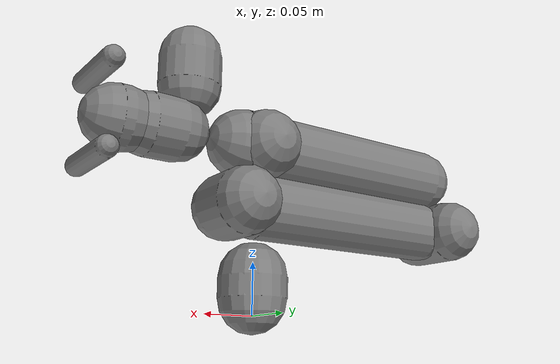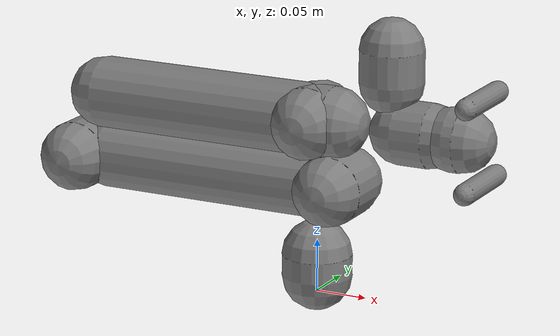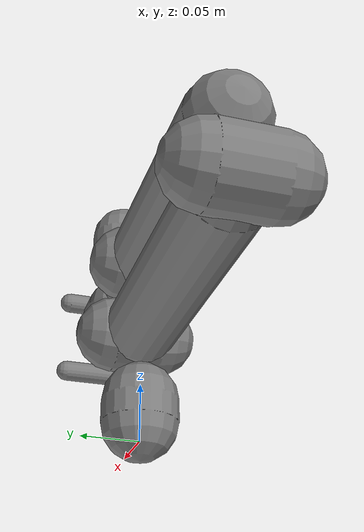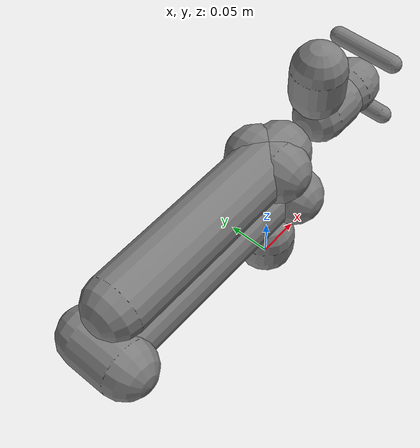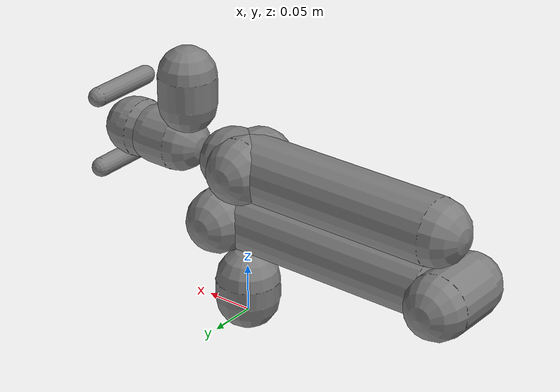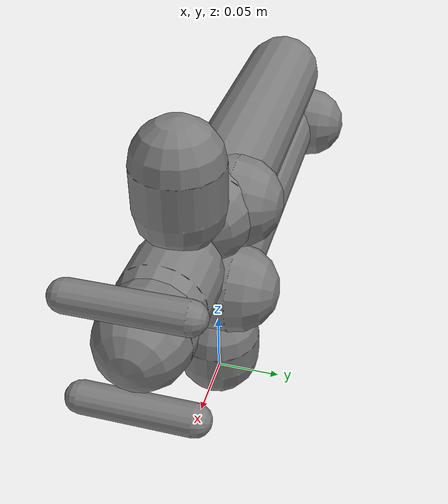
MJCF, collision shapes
<mujoco model="yam">
    <compiler angle="radian"/>

    <asset>
        <material name="yam_black" rgba="0.25 0.25 0.25 1"/>
        <material name="yam_white" rgba="0.9 0.9 0.9 1"/>
        <mesh name="yam_model2" file="meshes/model2.stl"/>
        <mesh name="yam_model2__2" file="meshes/model2__2.stl"/>
        <mesh name="yam_model2__3" file="meshes/model2__3.stl"/>
        <mesh name="yam_model2__4" file="meshes/model2__4.stl"/>
        <mesh name="yam_model2__5" file="meshes/model2__5.stl"/>
        <mesh name="yam_model2__6" file="meshes/model2__6.stl"/>
        <mesh name="yam_model2__7" file="meshes/model2__7.stl"/>
        <mesh name="yam_model2__8" file="meshes/model2__8.stl"/>
        <mesh name="yam_model2__9" file="meshes/model2__9.stl"/>
        <mesh name="yam_model2__10" file="meshes/model2__10.stl"/>
        <mesh name="yam_model2__11" file="meshes/model2__11.stl"/>
        <mesh name="yam_model2__12" file="meshes/model2__12.stl"/>
        <mesh name="yam_model2__13" file="meshes/model2__13.stl"/>
        <mesh name="yam_model2__14" file="meshes/model2__14.stl"/>
        <mesh name="yam_model2__15" file="meshes/model2__15.stl"/>
        <mesh name="yam_model2__16" file="meshes/model2__16.stl"/>
        <mesh name="yam_model2__17" file="meshes/model2__17.stl"/>
    </asset>

    <actuator>
        <!-- YAM arm joints as torque actuators (required for OSC controller).
             Torque limits from homer: dm4340 ±28 Nm, dm4310 ±10 Nm. -->
        <motor ctrllimited="true" ctrlrange="-28.0 28.0" joint="joint1" name="torq_j1"/>
        <motor ctrllimited="true" ctrlrange="-28.0 28.0" joint="joint2" name="torq_j2"/>
        <motor ctrllimited="true" ctrlrange="-28.0 28.0" joint="joint3" name="torq_j3"/>
        <motor ctrllimited="true" ctrlrange="-10.0 10.0" joint="joint4" name="torq_j4"/>
        <motor ctrllimited="true" ctrlrange="-10.0 10.0" joint="joint5" name="torq_j5"/>
        <motor ctrllimited="true" ctrlrange="-10.0 10.0" joint="joint6" name="torq_j6"/>
    </actuator>

    <worldbody>
        <body name="base" pos="0 0 0">
            <!-- Robot overview camera -->
            <camera mode="fixed" name="robotview" pos="1.0 0 0.4" quat="0.653 0.271 0.271 0.653"/>
            <inertial pos="0 0 0" mass="0.5" diaginertia="0.001 0.001 0.001"/>

            <body name="arm_base" pos="0 0 0">
                <site name="right_center" pos="0 0 0" size="0.01" rgba="1 0.3 0.3 1" type="sphere" group="2"/>
                <geom type="mesh" contype="0" conaffinity="0" density="0" group="1" material="yam_black" pos="0 0 -0.0006" quat="1 0 0 1" mesh="yam_model2"/>
                <geom group="0" type="capsule" size="0.033 0.01" pos="0.0 0.0 0.026" quat="1 0 0 0"/>

                <body name="link_1" pos="0 0 0.0631" quat="1 0 0 1">
                    <inertial pos="-0.00192861 -0.00795735 0.0208176" quat="0.297851 0.642634 0.360045 0.607185"
                        mass="0.12415" diaginertia="0.000180751 0.000145532 5.89179e-05"/>
                    <joint name="joint1" axis="0 0 1" frictionloss="0.1" range="-2.61799 3.05433" armature="0.032"/>
                    <geom type="mesh" contype="0" conaffinity="0" density="0" group="1" material="yam_black" pos="5.26159e-07 2.34355e-07 -0.0632" quat="1 0 0 0" mesh="yam_model2__2"/>

                    <body name="link_2" pos="2.5e-05 -0.02 0.0409" quat="1 1 1 1">
                        <inertial pos="0.132008 2.10599e-06 0.000293073" quat="1 1 1 1" mass="1.24434"
                            diaginertia="0.0121902 0.0121318 0.000683304"/>
                        <joint name="joint2" axis="0 0 1" frictionloss="0.1" range="0 3.66519" armature="0.032"/>
                        <geom type="mesh" contype="0" conaffinity="0" density="0" group="1" material="yam_black" pos="0.0199992 -0.1041 -2.44738e-05" quat="1 -1 -1 -1" mesh="yam_model2__3"/>
                        <geom type="mesh" contype="0" conaffinity="0" density="0" group="1" material="yam_black" pos="0.0199992 -0.1041 -2.44738e-05" quat="1 -1 -1 -1" mesh="yam_model2__4"/>
                        <geom type="mesh" contype="0" conaffinity="0" density="0" group="1" material="yam_white" pos="0.0199992 -0.1041 -2.44738e-05" quat="1 -1 -1 -1" mesh="yam_model2__5"/>
                        <geom group="0" type="capsule" size="0.032 0.11" pos="0.13 0 0" quat="1 0 1 0"/>
                        <geom group="0" type="capsule" size="0.033 0.02" pos="0 0.0 0" quat="1 0 0 0"/>
                        <geom group="0" type="capsule" size="0.033 0.025" pos="0.265 0 0" quat="1 0 0 0"/>

                        <body name="link_3" pos="0.264 0 0" quat="0 1 0 0">
                            <inertial pos="-0.121816 -0.054846 -0.000111108" quat="1 1 1 1" mass="0.853698"
                                diaginertia="0.00699732 0.00696112 0.000788244"/>
                            <joint name="joint3" axis="0 0 1" frictionloss="0.1" range="0 3.66519" armature="0.032"/>
                            <geom type="mesh" contype="0" conaffinity="0" density="0" group="1" material="yam_black" pos="-0.244001 0.104101 2.44738e-05" quat="1 1 1 -1" mesh="yam_model2__6"/>
                            <geom type="mesh" contype="0" conaffinity="0" density="0" group="1" material="yam_black" pos="-0.244001 0.104101 2.44738e-05" quat="1 1 1 -1" mesh="yam_model2__7"/>
                            <geom type="mesh" contype="0" conaffinity="0" density="0" group="1" material="yam_white" pos="-0.244001 0.104101 2.44738e-05" quat="1 1 1 -1" mesh="yam_model2__8"/>
                            <geom type="mesh" contype="0" conaffinity="0" density="0" group="1" material="yam_black" pos="-0.244001 0.104101 2.44738e-05" quat="1 1 1 -1" mesh="yam_model2__9"/>
                            <geom group="0" type="capsule" size="0.034 0.12" pos="-0.14 -0.06 0.0" quat="1 0 1 0"/>
                            <geom group="0" type="capsule" size="0.034 0.015" pos="-0.24 -0.06 0.0" quat="1 0 0 0"/>

                            <body name="link_4" pos="-0.245 -0.06 0" quat="1 0 0 0">
                                <inertial pos="-0.0769778 -0.0527104 0.000154878" quat="0.667 0.667 -0.236 -0.236"
                                    mass="0.463511" diaginertia="0.000791532 0.000744733 0.000282116"/>
                                <joint name="joint4" axis="0 0 1" frictionloss="0.1" range="-1.5708 1.5708" armature="0.0018"/>
                                <geom type="mesh" contype="0" conaffinity="0" density="0" group="1" material="yam_black" pos="0.00100023 0.164101 2.44738e-05" quat="1 1 1 -1" mesh="yam_model2__10"/>
                                <geom group="0" type="capsule" size="0.03 0.015" pos="-0.073 -0.06 0.0" quat="1 1 0 0"/>

                                <body name="link_5" pos="-0.074 -0.0395 2.5e-05" quat="1 -1 1 1">
                                    <inertial pos="3.64861e-05 0.00025665 0.0353526" quat="1 0 0 0" mass="0.350962"
                                        diaginertia="0.000197802 0.0001775 0.000147402"/>
                                    <joint name="joint5" axis="0 0 1" frictionloss="0.1" range="-1.5708 1.5708" armature="0.0018"/>
                                    <geom type="mesh" contype="0" conaffinity="0" density="0" group="1" material="yam_black" pos="0 -0.0749971 0.203601" quat="1.32679e-06 1 0 0" mesh="yam_model2__11"/>
                                    <geom group="0" type="capsule" size="0.030 0.015" pos="0 0.025 0.0395" quat="1 1 0 0"/>

                                    <body name="link_6" pos="0 0.0353 0.0395" quat="1 -1 0 0">
                                        <inertial pos="-0.000217767 7.37059e-05 0.0270545" quat="1 1 0 0" mass="0.367476"
                                            diaginertia="0.000265958 0.000242686 0.000227409"/>
                                        <joint name="joint6" axis="0 0 1" frictionloss="0.1" range="-2.0944 2.0944" armature="0.0018"/>
                                        <geom type="mesh" contype="0" conaffinity="0" density="0" group="1" material="yam_black" pos="0 -0.164101 -0.110597" quat="1 -1 0 0" mesh="yam_model2__12"/>
                                        <geom type="mesh" contype="0" conaffinity="0" density="0" group="1" material="yam_black" pos="0 -0.164101 -0.110597" quat="1 -1 0 0" mesh="yam_model2__13"/>
                                        <geom group="0" type="capsule" size="0.01 0.035" pos="0 0.039 0.052" quat="1 0 1 0"/>
                                        <geom group="0" type="capsule" size="0.030 0.005" pos="0 0.0 0.03" quat="1 0 0 1"/>
                                        <geom group="0" type="capsule" size="0.01 0.035" pos="0 -0.039 0.052" quat="1 0 1 0"/>

                                        <!-- EEF mount body — YamGripper merges here -->
                                        <body name="right_hand" pos="0 0 0.1347" quat="1 0 0 -1">
                                            <!-- Wrist camera (inside right_hand so robocasa's parent_body lookup finds it) -->
                                            <camera name="eye_in_hand" pos="0.05 0 0" quat="0 0.707108 0.707108 0" fovy="75"/>
                                        </body>
                                    </body>
                                </body>
                            </body>
                        </body>
                    </body>
                </body>
            </body>
        </body>
    </worldbody>
</mujoco>
